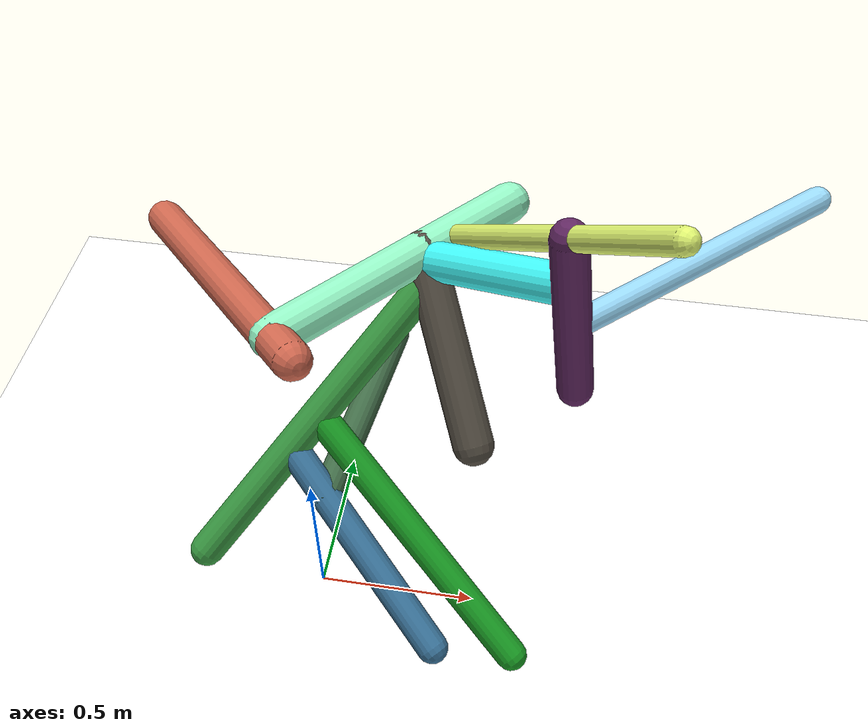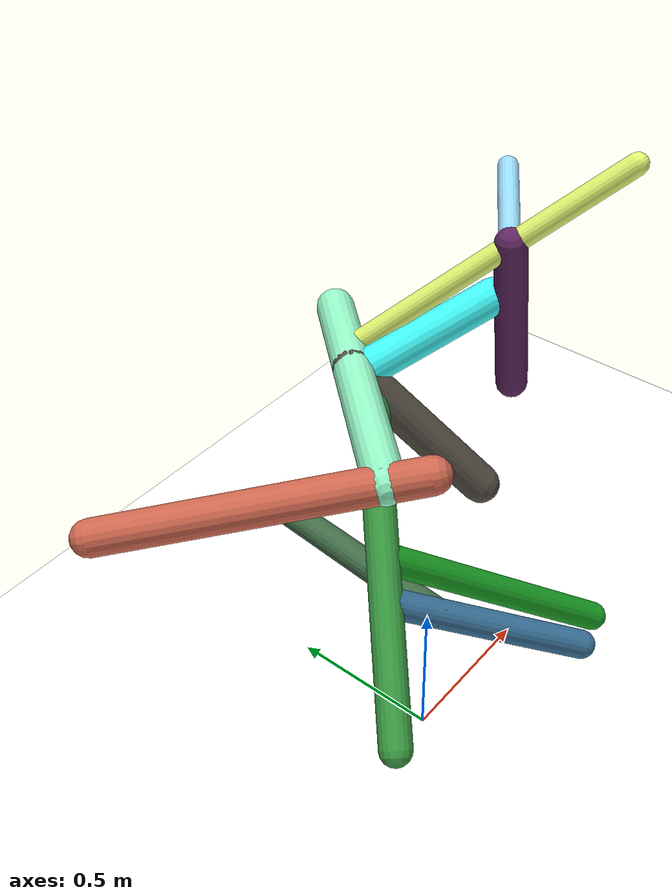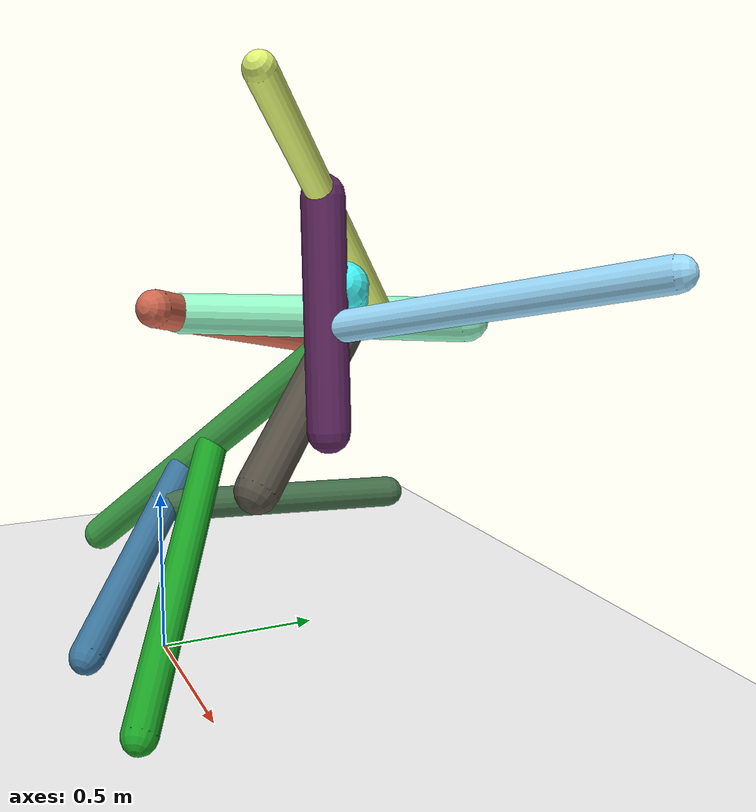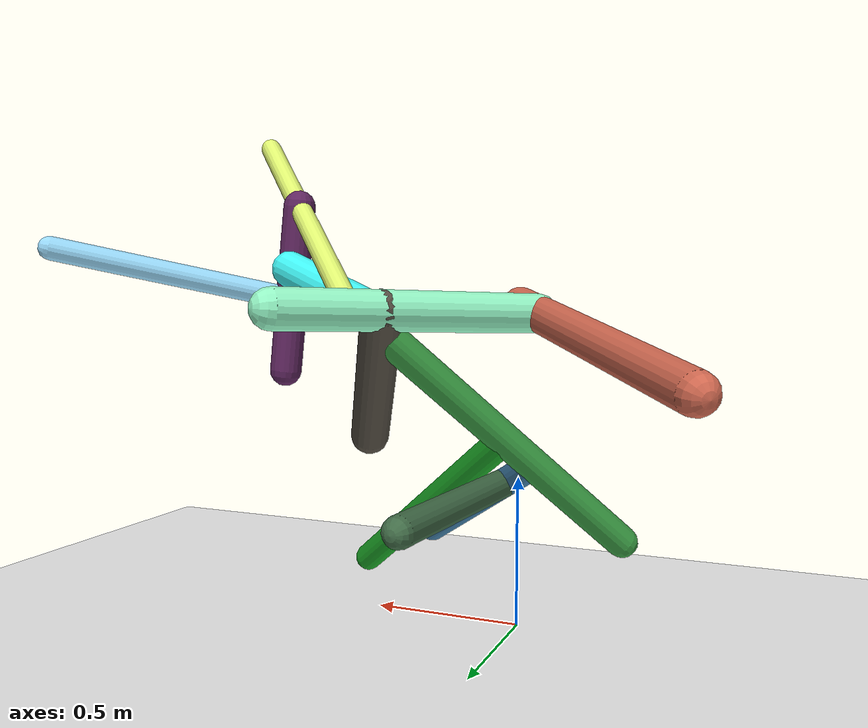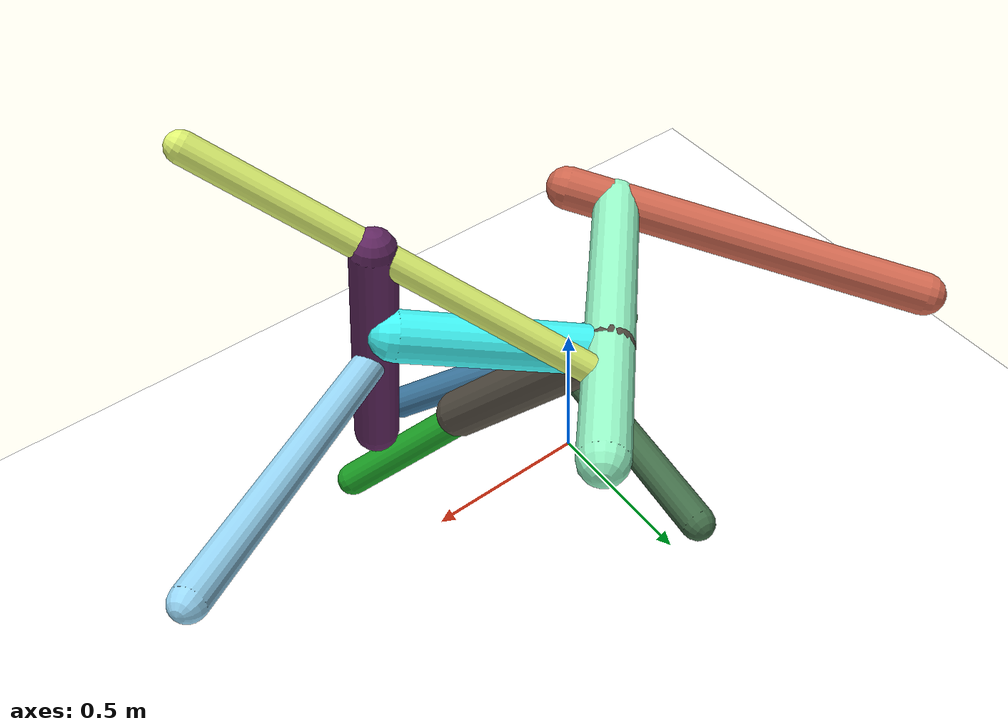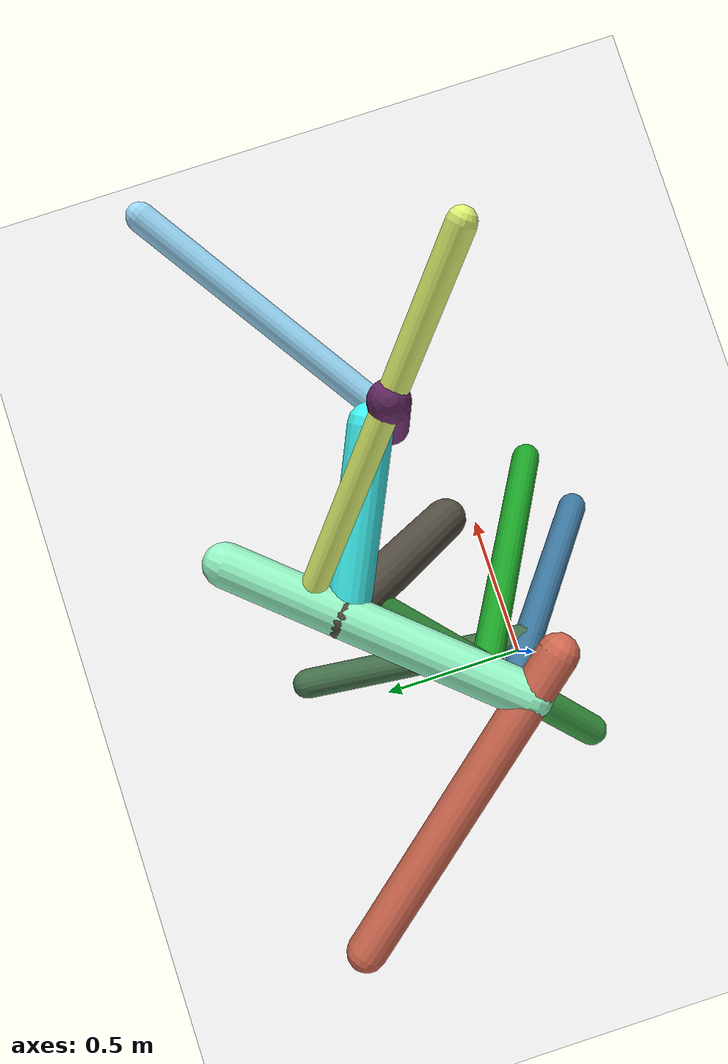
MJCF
<mujoco model="morphology">
  <option timestep="0.01"/>
  <default>
    <default class="/"/>
    <default class="0/"/>
    <default class="0/1/"/>
    <default class="0/1/2/"/>
    <default class="0/1/2/3/"/>
    <default class="0/1/2/3/4/"/>
    <default class="0/1/5/"/>
    <default class="0/1/5/6/"/>
    <default class="0/1/5/6/7/"/>
    <default class="0/1/5/6/7/8/"/>
    <default class="0/1/5/6/9/"/>
    <default class="0/1/5/10/"/>
  </default>
  <asset>
    <texture name="texplane" type="2d" builtin="checker" rgb1="0.10000000000000001 0.20000000000000001 0.29999999999999999" rgb2="0.20000000000000001 0.29999999999999999 0.40000000000000002" width="300" height="300"/>
    <material name="MatPlane" class="/" texture="texplane" texrepeat="20 20" specular="1" shininess="1" reflectance="0.5"/>
  </asset>
  <worldbody>
    <light name="//unnamed_light_0" class="/" directional="true" pos="0 0 1.5" dir="0 0 -1.3" cutoff="100" exponent="1" diffuse="1 1 1" specular="0.10000000000000001 0.10000000000000001 0.10000000000000001"/>
    <geom name="ground" class="/" type="plane" size="15 15 0.5" material="MatPlane" rgba="1 1 1 1"/>
    <site name="body" class="/" size="9.9999999999999995e-07 9.9999999999999995e-07 9.9999999999999995e-07" pos="0 0 1.0702491164207459"/>
    <body pos="0 0 1.0702491164207459" name="0/">
      <freejoint name="0/"/>
      <geom name="0/geom" class="0/" type="capsule" contype="1" conaffinity="1" condim="3" size="0.057495024534855443" rgba="0.81971961714110719 0.4108792754384536 0.31586489348421709 1" friction="0.59999999999999998 0.10000000000000001 0.10000000000000001" fromto="0 0 0 -0.62406235629044171 0.73357337864944938 -0.20332841053258743"/>
      <site name="0/end0" class="0/" size="0.0050000000000000001" pos="-0.62406235629044171 0.73357337864944938 -0.20332841053258743"/>
      <site name="0/attach1" class="0/" size="9.9999999999999995e-07 9.9999999999999995e-07 9.9999999999999995e-07" pos="-0.085021235063088382 0.099940837695955811 -0.027701130203805609"/>
      <body pos="-0.085021235063088382 0.099940837695955811 -0.027701130203805609" name="0/1/">
        <geom name="0/1/geom" class="0/1/" type="capsule" contype="1" conaffinity="1" condim="3" size="0.062125331048954943" rgba="0.58598782359907109 0.96817444020907228 0.77696625273524389 1" friction="0.59999999999999998 0.10000000000000001 0.10000000000000001" fromto="0 0 0 0.57542313407480616 0.65511889153511604 0.016161041694773393"/>
        <site name="0/1/end1" class="0/1/" size="0.0050000000000000001" pos="0.57542313407480616 0.65511889153511604 0.016161041694773393"/>
        <site name="0/1/attach2" class="0/1/" size="9.9999999999999995e-07 9.9999999999999995e-07 9.9999999999999995e-07" pos="0.41962299654757196 0.47774052880736501 0.011785318214907654"/>
        <body pos="0.41962299654757196 0.47774052880736501 0.011785318214907654" name="0/1/2/">
          <joint name="0/1/2/joint/" class="0/1/" type="hinge" axis="-0.7514278375089245 0.65961460626158774 0.016271945889540337" limited="true" range="-31.827290794650871 31.827290794650871"/>
          <geom name="0/1/2/geom" class="0/1/2/" type="capsule" contype="1" conaffinity="1" condim="3" size="0.035599115312029965" rgba="0.88521741361401118 0.97048441627375115 0.44692757570699904 1" friction="0.59999999999999998 0.10000000000000001 0.10000000000000001" fromto="0 0 0 0.61272824945267912 -0.60024607998253865 0.57983471168626854"/>
          <site name="0/1/2/end2" class="0/1/2/" size="0.0050000000000000001" pos="0.61272824945267912 -0.60024607998253865 0.57983471168626854"/>
          <site name="0/1/2/attach3" class="0/1/2/" size="9.9999999999999995e-07 9.9999999999999995e-07 9.9999999999999995e-07" pos="0.35721330843925414 -0.34993635155516867 0.33803676571855079"/>
          <body pos="0.35721330843925414 -0.34993635155516867 0.33803676571855079" name="0/1/2/3/">
            <geom name="0/1/2/3/geom" class="0/1/2/3/" type="capsule" contype="1" conaffinity="1" condim="3" size="0.053333928071508149" rgba="0.38403722637339333 0.15834603427167959 0.38639673331951663 1" friction="0.59999999999999998 0.10000000000000001 0.10000000000000001" fromto="0 0 0 0.06151348386103539 -0.0075558213095029414 -0.54426821649851775"/>
            <site name="0/1/2/3/end3" class="0/1/2/3/" size="0.0050000000000000001" pos="0.06151348386103539 -0.0075558213095029414 -0.54426821649851775"/>
            <site name="0/1/2/3/attach4" class="0/1/2/3/" size="9.9999999999999995e-07 9.9999999999999995e-07 9.9999999999999995e-07" pos="0.034331963443508709 -0.004217062092752891 -0.30376748867782755"/>
            <body pos="0.034331963443508709 -0.004217062092752891 -0.30376748867782755" name="0/1/2/3/4/">
              <joint name="0/1/2/3/4/joint/" class="0/1/2/3/" type="hinge" axis="0.99367493011751151 0.0015587867203162298 0.11228403020874739" limited="true" range="-56.357585905514632 56.357585905514632"/>
              <geom name="0/1/2/3/4/geom" class="0/1/2/3/4/" type="capsule" contype="1" conaffinity="1" condim="3" size="0.038427498048079628" rgba="0.60473452105182046 0.85656251144991402 0.98215276611951174 1" friction="0.59999999999999998 0.10000000000000001 0.10000000000000001" fromto="0 0 0 0.63192944565489184 0.44190384504991731 0.16107583566292583"/>
              <site name="0/1/2/3/4/end4" class="0/1/2/3/4/" size="0.0050000000000000001" pos="0.63192944565489184 0.44190384504991731 0.16107583566292583"/>
            </body>
          </body>
        </body>
        <site name="0/1/attach5" class="0/1/" size="9.9999999999999995e-07 9.9999999999999995e-07 9.9999999999999995e-07" pos="0.35363167451952149 0.40260944842863788 0.0099319194833754308"/>
        <body pos="0.35363167451952149 0.40260944842863788 0.0099319194833754308" name="0/1/5/">
          <joint name="0/1/5/joint/" class="0/1/" type="hinge" axis="0 -0.024661365625445724 0.99969586227286555" limited="true" range="-50.620955671201074 50.620955671201074"/>
          <geom name="0/1/5/geom" class="0/1/5/" type="capsule" contype="1" conaffinity="1" condim="3" size="0.063315975672848593" rgba="0.33610445208307349 0.31021504796980304 0.26724022984474438 1" friction="0.59999999999999998 0.10000000000000001 0.10000000000000001" fromto="0 0 0 0.20701236753891328 -0.36218543239900358 -0.42090548910674525"/>
          <site name="0/1/5/end5" class="0/1/5/" size="0.0050000000000000001" pos="0.20701236753891328 -0.36218543239900358 -0.42090548910674525"/>
          <site name="0/1/5/attach6" class="0/1/5/" size="9.9999999999999995e-07 9.9999999999999995e-07 9.9999999999999995e-07" pos="0.029233859550914468 -0.051147079703580491 -0.059439404993243058"/>
          <body pos="0.029233859550914468 -0.051147079703580491 -0.059439404993243058" name="0/1/5/6/">
            <geom name="0/1/5/6/geom" class="0/1/5/6/" type="capsule" contype="1" conaffinity="1" condim="3" size="0.052523087222776869" rgba="0.23287982710263933 0.61972255695540079 0.26863280529557487 1" friction="0.59999999999999998 0.10000000000000001 0.10000000000000001" fromto="0 0 0 -0.61575545242229346 -0.57775270173632598 -0.70458988605646677"/>
            <site name="0/1/5/6/end6" class="0/1/5/6/" size="0.0050000000000000001" pos="-0.61575545242229346 -0.57775270173632598 -0.70458988605646677"/>
            <site name="0/1/5/6/attach7" class="0/1/5/6/" size="9.9999999999999995e-07 9.9999999999999995e-07 9.9999999999999995e-07" pos="-0.37427291102605864 -0.35117380557716366 -0.42826889586844885"/>
            <body pos="-0.37427291102605864 -0.35117380557716366 -0.42826889586844885" name="0/1/5/6/7/">
              <joint name="0/1/5/6/7/joint/" class="0/1/5/6/" type="hinge" axis="0.82854900444159374 -0.355027614304669 -0.43296875212881064" limited="true" range="-38.939390776613934 38.939390776613934"/>
              <geom name="0/1/5/6/7/geom" class="0/1/5/6/7/" type="capsule" contype="1" conaffinity="1" condim="3" size="0.047757610905785494" rgba="0.23253288493091895 0.46259000608854961 0.61877345368951375 1" friction="0.59999999999999998 0.10000000000000001 0.10000000000000001" fromto="0 0 0 0.50115704153189755 -0.41756852371864994 -0.34567743388265598"/>
              <site name="0/1/5/6/7/end7" class="0/1/5/6/7/" size="0.0050000000000000001" pos="0.50115704153189755 -0.41756852371864994 -0.34567743388265598"/>
              <site name="0/1/5/6/7/attach8" class="0/1/5/6/7/" size="9.9999999999999995e-07 9.9999999999999995e-07 9.9999999999999995e-07" pos="0.12382850076053754 -0.10317501296363676 -0.085411786799596837"/>
              <body pos="0.12382850076053754 -0.10317501296363676 -0.085411786799596837" name="0/1/5/6/7/8/">
                <geom name="0/1/5/6/7/8/geom" class="0/1/5/6/7/8/" type="capsule" contype="1" conaffinity="1" condim="3" size="0.047662790868257469" rgba="0.26141247201523188 0.43088357844213387 0.28635120893351029 1" friction="0.59999999999999998 0.10000000000000001 0.10000000000000001" fromto="0 0 0 0.07809379216175838 0.7177520691036221 -0.016121699810607959"/>
                <site name="0/1/5/6/7/8/end8" class="0/1/5/6/7/8/" size="0.0050000000000000001" pos="0.07809379216175838 0.7177520691036221 -0.016121699810607959"/>
              </body>
            </body>
            <site name="0/1/5/6/attach9" class="0/1/5/6/" size="9.9999999999999995e-07 9.9999999999999995e-07 9.9999999999999995e-07" pos="-0.29972432625372514 -0.28122615656585326 -0.34296526007638412"/>
            <body pos="-0.29972432625372514 -0.28122615656585326 -0.34296526007638412" name="0/1/5/6/9/">
              <joint name="0/1/5/6/9/joint/" class="0/1/5/6/" type="hinge" axis="5.5511151231257827e-17 -0.77327371226453812 0.63407236646980658" limited="true" range="-51.840752256647328 51.840752256647328"/>
              <geom name="0/1/5/6/9/geom" class="0/1/5/6/9/" type="capsule" contype="1" conaffinity="1" condim="3" size="0.049092789362662079" rgba="0.10804432353104132 0.63777706085357877 0.14934975376377901 1" friction="0.59999999999999998 0.10000000000000001 0.10000000000000001" fromto="0 0 0 0.65884291740218726 -0.4083170967240648 -0.55007524713561873"/>
              <site name="0/1/5/6/9/end9" class="0/1/5/6/9/" size="0.0050000000000000001" pos="0.65884291740218726 -0.4083170967240648 -0.55007524713561873"/>
            </body>
          </body>
          <site name="0/1/5/attach10" class="0/1/5/" size="9.9999999999999995e-07 9.9999999999999995e-07 9.9999999999999995e-07" pos="0.0086736839365836541 -0.015175334712663099 -0.017635667004285628"/>
          <body pos="0.0086736839365836541 -0.015175334712663099 -0.017635667004285628" name="0/1/5/10/">
            <joint name="0/1/5/10/joint/" class="0/1/5/" type="hinge" axis="0.93700366943092217 0.22784478418338977 0.26478458752996031" limited="true" range="-49.593118657562883 49.593118657562883"/>
            <geom name="0/1/5/10/geom" class="0/1/5/10/" type="capsule" contype="1" conaffinity="1" condim="3" size="0.059741592285250861" rgba="0.25946992303717475 0.97939667750270187 0.97920127162937132 1" friction="0.59999999999999998 0.10000000000000001 0.10000000000000001" fromto="0 0 0 0.422005299991004 -0.20651901837216236 0.1506879140706191"/>
            <site name="0/1/5/10/end10" class="0/1/5/10/" size="0.0050000000000000001" pos="0.422005299991004 -0.20651901837216236 0.1506879140706191"/>
          </body>
        </body>
      </body>
      <camera name="0/iso" class="0/" mode="trackcom" pos="-2.2999999999999998 -2.2999999999999998 1" xyaxes="0.45000000000000001 -0.45000000000000001 0 0.29999999999999999 0.14999999999999999 0.93999999999999995"/>
    </body>
  </worldbody>
  <actuator>
    <motor name="0/1/2/motor" class="0/1/2/" ctrllimited="true" ctrlrange="-1 1" gear="80" joint="0/1/2/joint/"/>
    <motor name="0/1/2/3/4/motor" class="0/1/2/3/4/" ctrllimited="true" ctrlrange="-1 1" gear="66" joint="0/1/2/3/4/joint/"/>
    <motor name="0/1/5/motor" class="0/1/5/" ctrllimited="true" ctrlrange="-1 1" gear="75" joint="0/1/5/joint/"/>
    <motor name="0/1/5/6/7/motor" class="0/1/5/6/7/" ctrllimited="true" ctrlrange="-1 1" gear="81" joint="0/1/5/6/7/joint/"/>
    <motor name="0/1/5/6/9/motor" class="0/1/5/6/9/" ctrllimited="true" ctrlrange="-1 1" gear="50" joint="0/1/5/6/9/joint/"/>
    <motor name="0/1/5/10/motor" class="0/1/5/10/" ctrllimited="true" ctrlrange="-1 1" gear="72" joint="0/1/5/10/joint/"/>
  </actuator>
  <sensor>
    <subtreelinvel name="velocity" body="0/"/>
  </sensor>
</mujoco>
